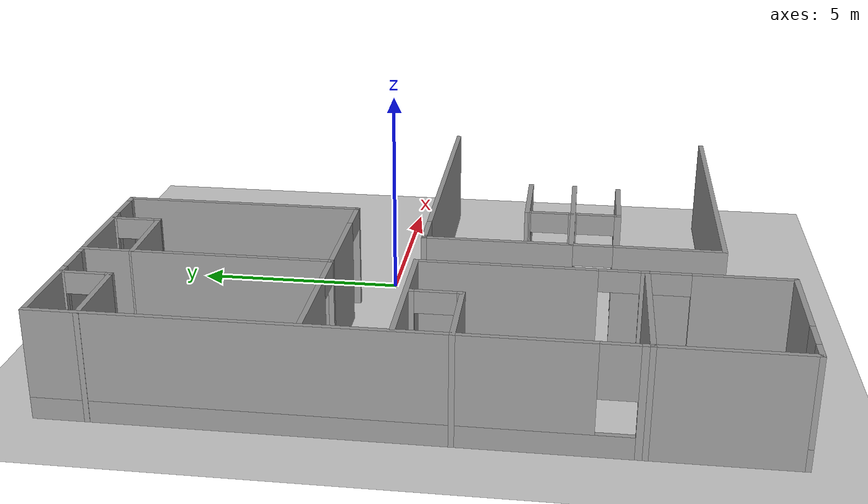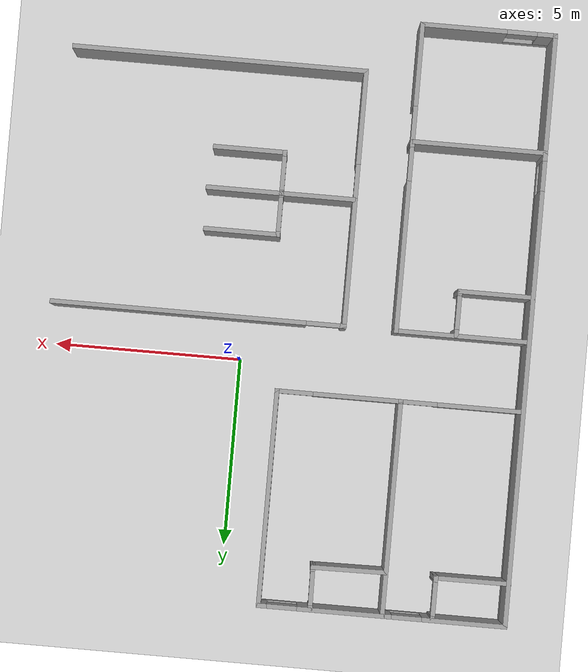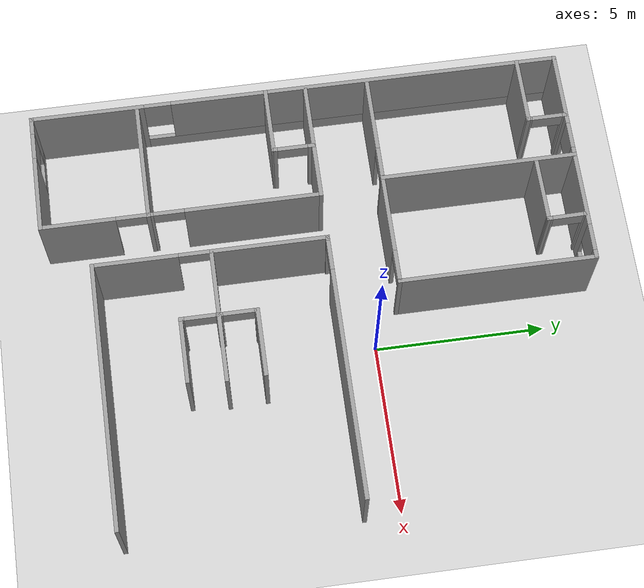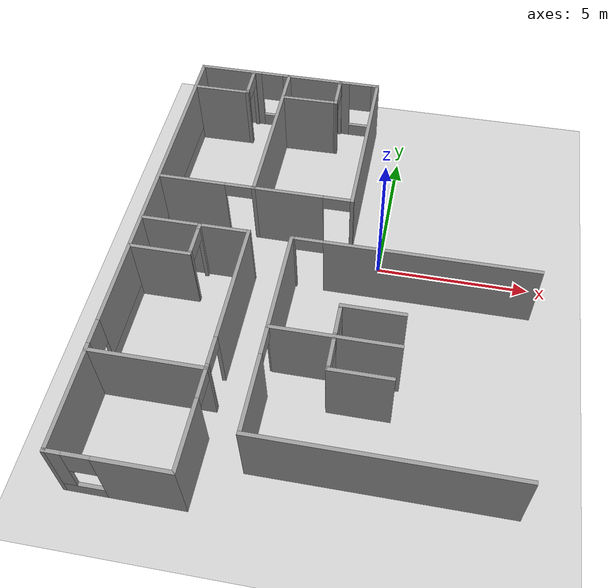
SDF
<sdf version="1.6">
 <world name="default">
  <model name="ground_plane">
   <static>1</static>
   <link name="link">
    <collision name="collision">
     <geometry><plane><normal>0 0 1</normal><size>100 100</size></plane></geometry>
     <surface><friction><ode><mu>100</mu><mu2>50</mu2></ode></friction></surface>
    </collision>
    <visual name="visual">
     <cast_shadows>0</cast_shadows>
     <geometry><plane><normal>0 0 1</normal><size>100 100</size></plane></geometry>
     <material>
      <script><uri>file://media/materials/scripts/gazebo.material</uri><name>Gazebo/Grey</name></script>
     </material>
    </visual>
   </link>
  </model>
  <model name="resthome">
   <pose>1.14114 -1.394 0 0 -0 0</pose>
   <link name="Wall_102">
    <collision name="Wall_102_Collision">
     <geometry><box><size>3.97 0.12 2.5</size></box></geometry>
     <pose>0 0 1.25 0 -0 0</pose>
    </collision>
    <visual name="Wall_102_Visual">
     <pose>0 0 1.25 0 -0 0</pose>
     <geometry><box><size>3.97 0.12 2.5</size></box></geometry>
     <material>
      <script><uri>file://media/materials/scripts/gazebo.material</uri><name>Gazebo/Grey</name></script>
      <ambient>1 1 1 1</ambient>
     </material>
    </visual>
    <pose>-1.86014 -3.05 0 0 -0 3.14159</pose>
   </link>
   <link name="Wall_115">
    <pose>-6.81414 -0.269 0 0 0 -1.5708</pose>
    <visual name="Wall_115_Visual_0">
     <pose>-0.510844 0 1.25 0 -0 0</pose>
     <geometry><box><size>0.214795 0.12 2.5</size></box></geometry>
     <material>
      <script><uri>file://media/materials/scripts/gazebo.material</uri><name>Gazebo/Grey</name></script>
      <ambient>1 1 1 1</ambient>
     </material>
    </visual>
    <collision name="Wall_115_Collision_0">
     <geometry><box><size>0.214795 0.12 2.5</size></box></geometry>
     <pose>-0.510844 0 1.25 0 -0 0</pose>
    </collision>
    <visual name="Wall_115_Visual_1">
     <pose>0.557398 0 1.25 0 -0 0</pose>
     <geometry><box><size>0.121688 0.12 2.5</size></box></geometry>
     <material>
      <script><uri>file://media/materials/scripts/gazebo.material</uri><name>Gazebo/Grey</name></script>
      <ambient>1 1 1 1</ambient>
     </material>
    </visual>
    <collision name="Wall_115_Collision_1">
     <geometry><box><size>0.121688 0.12 2.5</size></box></geometry>
     <pose>0.557398 0 1.25 0 -0 0</pose>
    </collision>
    <visual name="Wall_115_Visual_2">
     <pose>0.046554 0 2.25 0 -0 0</pose>
     <geometry><box><size>0.9 0.12 0.5</size></box></geometry>
     <material>
      <script><uri>file://media/materials/scripts/gazebo.material</uri><name>Gazebo/Grey</name></script>
      <ambient>1 1 1 1</ambient>
     </material>
    </visual>
    <collision name="Wall_115_Collision_2">
     <geometry><box><size>0.9 0.12 0.5</size></box></geometry>
     <pose>0.046554 0 2.25 0 -0 0</pose>
    </collision>
   </link>
   <link name="Wall_118">
    <collision name="Wall_118_Collision">
     <geometry><box><size>2.052 0.12 2.5</size></box></geometry>
     <pose>0 0 1.25 0 -0 0</pose>
    </collision>
    <visual name="Wall_118_Visual">
     <pose>0 0 1.25 0 -0 0</pose>
     <geometry><box><size>2.052 0.12 2.5</size></box></geometry>
     <material>
      <script><uri>file://media/materials/scripts/gazebo.material</uri><name>Gazebo/Grey</name></script>
      <ambient>1 1 1 1</ambient>
     </material>
    </visual>
    <pose>-7.78414 -0.876 0 0 -0 0</pose>
   </link>
   <link name="Wall_129">
    <collision name="Wall_129_Collision">
     <geometry><box><size>3.658 0.12 2.5</size></box></geometry>
     <pose>0 0 1.25 0 -0 0</pose>
    </collision>
    <visual name="Wall_129_Visual">
     <pose>0 0 1.25 0 -0 0</pose>
     <geometry><box><size>3.658 0.12 2.5</size></box></geometry>
     <material>
      <script><uri>file://media/materials/scripts/gazebo.material</uri><name>Gazebo/Grey</name></script>
      <ambient>1 1 1 1</ambient>
     </material>
    </visual>
    <pose>-6.98214 -4.718 0 0 -0 3.14159</pose>
   </link>
   <link name="Wall_133">
    <collision name="Wall_133_Collision">
     <geometry><box><size>2.05174 0.12 2.5</size></box></geometry>
     <pose>0 0 1.25 0 -0 0</pose>
    </collision>
    <visual name="Wall_133_Visual">
     <pose>0 0 1.25 0 -0 0</pose>
     <geometry><box><size>2.05174 0.12 2.5</size></box></geometry>
     <material>
      <script><uri>file://media/materials/scripts/gazebo.material</uri><name>Gazebo/Grey</name></script>
      <ambient>1 1 1 1</ambient>
     </material>
    </visual>
    <pose>-7.79079 6.709 0 0 0 -3.13849</pose>
   </link>
   <link name="Wall_137">
    <collision name="Wall_137_Collision">
     <geometry><box><size>2.051 0.12 2.5</size></box></geometry>
     <pose>0 0 1.25 0 -0 0</pose>
    </collision>
    <visual name="Wall_137_Visual">
     <pose>0 0 1.25 0 -0 0</pose>
     <geometry><box><size>2.051 0.12 2.5</size></box></geometry>
     <material>
      <script><uri>file://media/materials/scripts/gazebo.material</uri><name>Gazebo/Grey</name></script>
      <ambient>1 1 1 1</ambient>
     </material>
    </visual>
    <pose>-4.53455 6.70058 0 0 0 -3.1296</pose>
   </link>
   <link name="Wall_142">
    <pose>-6.82514 7.2545 0 0 0 -1.5708</pose>
    <visual name="Wall_142_Visual_0">
     <pose>-0.53647 0 1.25 0 -0 0</pose>
     <geometry><box><size>0.133047 0.12 2.5</size></box></geometry>
     <material>
      <script><uri>file://media/materials/scripts/gazebo.material</uri><name>Gazebo/Grey</name></script>
      <ambient>1 1 1 1</ambient>
     </material>
    </visual>
    <collision name="Wall_142_Collision_0">
     <geometry><box><size>0.133047 0.12 2.5</size></box></geometry>
     <pose>-0.53647 0 1.25 0 -0 0</pose>
    </collision>
    <visual name="Wall_142_Visual_1">
     <pose>0.516523 0 1.25 0 -0 0</pose>
     <geometry><box><size>0.17294 0.12 2.5</size></box></geometry>
     <material>
      <script><uri>file://media/materials/scripts/gazebo.material</uri><name>Gazebo/Grey</name></script>
      <ambient>1 1 1 1</ambient>
     </material>
    </visual>
    <collision name="Wall_142_Collision_1">
     <geometry><box><size>0.17294 0.12 2.5</size></box></geometry>
     <pose>0.516523 0 1.25 0 -0 0</pose>
    </collision>
    <visual name="Wall_142_Visual_2">
     <pose>-0.019947 0 2.25 0 -0 0</pose>
     <geometry><box><size>0.9 0.12 0.5</size></box></geometry>
     <material>
      <script><uri>file://media/materials/scripts/gazebo.material</uri><name>Gazebo/Grey</name></script>
      <ambient>1 1 1 1</ambient>
     </material>
    </visual>
    <collision name="Wall_142_Collision_2">
     <geometry><box><size>0.9 0.12 0.5</size></box></geometry>
     <pose>-0.019947 0 2.25 0 -0 0</pose>
    </collision>
   </link>
   <link name="Wall_145">
    <pose>-3.57748 7.2546 0 0 0 -1.55558</pose>
    <visual name="Wall_145_Visual_0">
     <pose>-0.537283 0 1.25 0 -0 0</pose>
     <geometry><box><size>0.130435 0.12 2.5</size></box></geometry>
     <material>
      <script><uri>file://media/materials/scripts/gazebo.material</uri><name>Gazebo/Grey</name></script>
      <ambient>1 1 1 1</ambient>
     </material>
    </visual>
    <collision name="Wall_145_Collision_0">
     <geometry><box><size>0.130435 0.12 2.5</size></box></geometry>
     <pose>-0.537283 0 1.25 0 -0 0</pose>
    </collision>
    <visual name="Wall_145_Visual_1">
     <pose>0.515217 0 1.25 0 -0 0</pose>
     <geometry><box><size>0.174565 0.12 2.5</size></box></geometry>
     <material>
      <script><uri>file://media/materials/scripts/gazebo.material</uri><name>Gazebo/Grey</name></script>
      <ambient>1 1 1 1</ambient>
     </material>
    </visual>
    <collision name="Wall_145_Collision_1">
     <geometry><box><size>0.174565 0.12 2.5</size></box></geometry>
     <pose>0.515217 0 1.25 0 -0 0</pose>
    </collision>
    <visual name="Wall_145_Visual_2">
     <pose>-0.022065 0 2.25 0 -0 0</pose>
     <geometry><box><size>0.9 0.12 0.5</size></box></geometry>
     <material>
      <script><uri>file://media/materials/scripts/gazebo.material</uri><name>Gazebo/Grey</name></script>
      <ambient>1 1 1 1</ambient>
     </material>
    </visual>
    <collision name="Wall_145_Collision_2">
     <geometry><box><size>0.9 0.12 0.5</size></box></geometry>
     <pose>-0.022065 0 2.25 0 -0 0</pose>
    </collision>
   </link>
   <link name="Wall_155">
    <collision name="Wall_155_Collision">
     <geometry><box><size>2.04056 0.12 2.5</size></box></geometry>
     <pose>0 0 1.25 0 -0 0</pose>
    </collision>
    <visual name="Wall_155_Visual">
     <pose>0 0 1.25 0 -0 0</pose>
     <geometry><box><size>2.04056 0.12 2.5</size></box></geometry>
     <material>
      <script><uri>file://media/materials/scripts/gazebo.material</uri><name>Gazebo/Grey</name></script>
      <ambient>1 1 1 1</ambient>
     </material>
    </visual>
    <pose>-0.923856 -1.952 0 0 -0 3.14159</pose>
   </link>
   <link name="Wall_157">
    <pose>-1.88414 -2.502 0 0 0 -1.5708</pose>
    <visual name="Wall_157_Visual_0">
     <pose>-0.533992 0 1.25 0 -0 0</pose>
     <geometry><box><size>0.151919 0.12 2.5</size></box></geometry>
     <material>
      <script><uri>file://media/materials/scripts/gazebo.material</uri><name>Gazebo/Grey</name></script>
      <ambient>1 1 1 1</ambient>
     </material>
    </visual>
    <collision name="Wall_157_Collision_0">
     <geometry><box><size>0.151919 0.12 2.5</size></box></geometry>
     <pose>-0.533992 0 1.25 0 -0 0</pose>
    </collision>
    <visual name="Wall_157_Visual_1">
     <pose>0.52596 0 1.25 0 -0 0</pose>
     <geometry><box><size>0.167985 0.12 2.5</size></box></geometry>
     <material>
      <script><uri>file://media/materials/scripts/gazebo.material</uri><name>Gazebo/Grey</name></script>
      <ambient>1 1 1 1</ambient>
     </material>
    </visual>
    <collision name="Wall_157_Collision_1">
     <geometry><box><size>0.167985 0.12 2.5</size></box></geometry>
     <pose>0.52596 0 1.25 0 -0 0</pose>
    </collision>
    <visual name="Wall_157_Visual_2">
     <pose>-0.008033 0 2.25 0 -0 0</pose>
     <geometry><box><size>0.9 0.12 0.5</size></box></geometry>
     <material>
      <script><uri>file://media/materials/scripts/gazebo.material</uri><name>Gazebo/Grey</name></script>
      <ambient>1 1 1 1</ambient>
     </material>
    </visual>
    <collision name="Wall_157_Collision_2">
     <geometry><box><size>0.9 0.12 0.5</size></box></geometry>
     <pose>-0.008033 0 2.25 0 -0 0</pose>
    </collision>
   </link>
   <link name="Wall_163">
    <pose>-1.88414 -3.595 0 0 0 -1.5708</pose>
    <visual name="Wall_163_Visual_0">
     <pose>-0.529501 0 1.25 0 -0 0</pose>
     <geometry><box><size>0.146998 0.12 2.5</size></box></geometry>
     <material>
      <script><uri>file://media/materials/scripts/gazebo.material</uri><name>Gazebo/Grey</name></script>
      <ambient>1 1 1 1</ambient>
     </material>
    </visual>
    <collision name="Wall_163_Collision_0">
     <geometry><box><size>0.146998 0.12 2.5</size></box></geometry>
     <pose>-0.529501 0 1.25 0 -0 0</pose>
    </collision>
    <visual name="Wall_163_Visual_1">
     <pose>0.523499 0 1.25 0 -0 0</pose>
     <geometry><box><size>0.159002 0.12 2.5</size></box></geometry>
     <material>
      <script><uri>file://media/materials/scripts/gazebo.material</uri><name>Gazebo/Grey</name></script>
      <ambient>1 1 1 1</ambient>
     </material>
    </visual>
    <collision name="Wall_163_Collision_1">
     <geometry><box><size>0.159002 0.12 2.5</size></box></geometry>
     <pose>0.523499 0 1.25 0 -0 0</pose>
    </collision>
    <visual name="Wall_163_Visual_2">
     <pose>-0.006002 0 2.25 0 -0 0</pose>
     <geometry><box><size>0.9 0.12 0.5</size></box></geometry>
     <material>
      <script><uri>file://media/materials/scripts/gazebo.material</uri><name>Gazebo/Grey</name></script>
      <ambient>1 1 1 1</ambient>
     </material>
    </visual>
    <collision name="Wall_163_Collision_2">
     <geometry><box><size>0.9 0.12 0.5</size></box></geometry>
     <pose>-0.006002 0 2.25 0 -0 0</pose>
    </collision>
   </link>
   <link name="Wall_165">
    <collision name="Wall_165_Collision">
     <geometry><box><size>1.97 0.12 2.5</size></box></geometry>
     <pose>0 0 1.25 0 -0 0</pose>
    </collision>
    <visual name="Wall_165_Visual">
     <pose>0 0 1.25 0 -0 0</pose>
     <geometry><box><size>1.97 0.12 2.5</size></box></geometry>
     <material>
      <script><uri>file://media/materials/scripts/gazebo.material</uri><name>Gazebo/Grey</name></script>
      <ambient>1 1 1 1</ambient>
     </material>
    </visual>
    <pose>-0.959138 -4.138 0 0 -0 0</pose>
   </link>
   <link name="Wall_28">
    <pose>-5.22114 -3.765 0 0 -0 1.5708</pose>
    <visual name="Wall_28_Visual_0">
     <pose>-3.01552 0 1.25 0 -0 0</pose>
     <geometry><box><size>2.23696 0.12 2.5</size></box></geometry>
     <material>
      <script><uri>file://media/materials/scripts/gazebo.material</uri><name>Gazebo/Grey</name></script>
      <ambient>1 1 1 1</ambient>
     </material>
    </visual>
    <collision name="Wall_28_Collision_0">
     <geometry><box><size>2.23696 0.12 2.5</size></box></geometry>
     <pose>-3.01552 0 1.25 0 -0 0</pose>
    </collision>
    <visual name="Wall_28_Visual_1">
     <pose>-0.90291 0 1.25 0 -0 0</pose>
     <geometry><box><size>0.188263 0.12 2.5</size></box></geometry>
     <material>
      <script><uri>file://media/materials/scripts/gazebo.material</uri><name>Gazebo/Grey</name></script>
      <ambient>1 1 1 1</ambient>
     </material>
    </visual>
    <collision name="Wall_28_Collision_1">
     <geometry><box><size>0.188263 0.12 2.5</size></box></geometry>
     <pose>-0.90291 0 1.25 0 -0 0</pose>
    </collision>
    <visual name="Wall_28_Visual_2">
     <pose>2.11261 0 1.25 0 -0 0</pose>
     <geometry><box><size>4.04278 0.12 2.5</size></box></geometry>
     <material>
      <script><uri>file://media/materials/scripts/gazebo.material</uri><name>Gazebo/Grey</name></script>
      <ambient>1 1 1 1</ambient>
     </material>
    </visual>
    <collision name="Wall_28_Collision_2">
     <geometry><box><size>4.04278 0.12 2.5</size></box></geometry>
     <pose>2.11261 0 1.25 0 -0 0</pose>
    </collision>
    <visual name="Wall_28_Visual_3">
     <pose>-1.44704 0 2.25 0 -0 0</pose>
     <geometry><box><size>0.9 0.12 0.5</size></box></geometry>
     <material>
      <script><uri>file://media/materials/scripts/gazebo.material</uri><name>Gazebo/Grey</name></script>
      <ambient>1 1 1 1</ambient>
     </material>
    </visual>
    <collision name="Wall_28_Collision_3">
     <geometry><box><size>0.9 0.12 0.5</size></box></geometry>
     <pose>-1.44704 0 2.25 0 -0 0</pose>
    </collision>
    <visual name="Wall_28_Visual_4">
     <pose>-0.358778 0 2.25 0 -0 0</pose>
     <geometry><box><size>0.9 0.12 0.5</size></box></geometry>
     <material>
      <script><uri>file://media/materials/scripts/gazebo.material</uri><name>Gazebo/Grey</name></script>
      <ambient>1 1 1 1</ambient>
     </material>
    </visual>
    <collision name="Wall_28_Collision_4">
     <geometry><box><size>0.9 0.12 0.5</size></box></geometry>
     <pose>-0.358778 0 2.25 0 -0 0</pose>
    </collision>
   </link>
   <link name="Wall_29">
    <collision name="Wall_29_Collision">
     <geometry><box><size>3.57 0.12 2.5</size></box></geometry>
     <pose>0 0 1.25 0 -0 0</pose>
    </collision>
    <visual name="Wall_29_Visual">
     <pose>0 0 1.25 0 -0 0</pose>
     <geometry><box><size>3.57 0.12 2.5</size></box></geometry>
     <material>
      <script><uri>file://media/materials/scripts/gazebo.material</uri><name>Gazebo/Grey</name></script>
      <ambient>1 1 1 1</ambient>
     </material>
    </visual>
    <pose>-6.94614 0.309 0 0 -0 3.14159</pose>
   </link>
   <link name="Wall_32">
    <pose>-6.98564 -7.839 0 0 -0 3.14159</pose>
    <visual name="Wall_32_Visual_0">
     <pose>-0.67 0 1.25 0 -0 0</pose>
     <geometry><box><size>2.309 0.12 2.5</size></box></geometry>
     <material>
      <script><uri>file://media/materials/scripts/gazebo.material</uri><name>Gazebo/Grey</name></script>
      <ambient>1 1 1 1</ambient>
     </material>
    </visual>
    <collision name="Wall_32_Collision_0">
     <geometry><box><size>2.309 0.12 2.5</size></box></geometry>
     <pose>-0.67 0 1.25 0 -0 0</pose>
    </collision>
    <visual name="Wall_32_Visual_1">
     <pose>1.1545 0 0.25 0 -0 0</pose>
     <geometry><box><size>1.34 0.12 0.5</size></box></geometry>
     <material>
      <script><uri>file://media/materials/scripts/gazebo.material</uri><name>Gazebo/Grey</name></script>
      <ambient>1 1 1 1</ambient>
     </material>
    </visual>
    <collision name="Wall_32_Collision_1">
     <geometry><box><size>1.34 0.12 0.5</size></box></geometry>
     <pose>1.1545 0 0.25 0 -0 0</pose>
    </collision>
    <visual name="Wall_32_Visual_2">
     <pose>1.5545 0 1.5 0 -0 0</pose>
     <geometry><box><size>0.54 0.12 2</size></box></geometry>
     <material>
      <script><uri>file://media/materials/scripts/gazebo.material</uri><name>Gazebo/Grey</name></script>
      <ambient>1 1 1 1</ambient>
     </material>
    </visual>
    <collision name="Wall_32_Collision_2">
     <geometry><box><size>0.54 0.12 2</size></box></geometry>
     <pose>1.5545 0 1.5 0 -0 0</pose>
    </collision>
    <visual name="Wall_32_Visual_3">
     <pose>0.8845 0 2 0 -0 0</pose>
     <geometry><box><size>0.8 0.12 1</size></box></geometry>
     <material>
      <script><uri>file://media/materials/scripts/gazebo.material</uri><name>Gazebo/Grey</name></script>
      <ambient>1 1 1 1</ambient>
     </material>
    </visual>
    <collision name="Wall_32_Collision_3">
     <geometry><box><size>0.8 0.12 1</size></box></geometry>
     <pose>0.8845 0 2 0 -0 0</pose>
    </collision>
   </link>
   <link name="Wall_33">
    <pose>-8.75014 0 0 0 -0 1.5708</pose>
    <visual name="Wall_33_Visual_0">
     <pose>-6.20354 0 1.25 0 -0 0</pose>
     <geometry><box><size>3.39092 0.12 2.5</size></box></geometry>
     <material>
      <script><uri>file://media/materials/scripts/gazebo.material</uri><name>Gazebo/Grey</name></script>
      <ambient>1 1 1 1</ambient>
     </material>
    </visual>
    <collision name="Wall_33_Collision_0">
     <geometry><box><size>3.39092 0.12 2.5</size></box></geometry>
     <pose>-6.20354 0 1.25 0 -0 0</pose>
    </collision>
    <visual name="Wall_33_Visual_1">
     <pose>1.69546 0 0.25 0 -0 0</pose>
     <geometry><box><size>12.4071 0.12 0.5</size></box></geometry>
     <material>
      <script><uri>file://media/materials/scripts/gazebo.material</uri><name>Gazebo/Grey</name></script>
      <ambient>1 1 1 1</ambient>
     </material>
    </visual>
    <collision name="Wall_33_Collision_1">
     <geometry><box><size>12.4071 0.12 0.5</size></box></geometry>
     <pose>1.69546 0 0.25 0 -0 0</pose>
    </collision>
    <visual name="Wall_33_Visual_2">
     <pose>2.09546 0 1.5 0 -0 0</pose>
     <geometry><box><size>11.6071 0.12 2</size></box></geometry>
     <material>
      <script><uri>file://media/materials/scripts/gazebo.material</uri><name>Gazebo/Grey</name></script>
      <ambient>1 1 1 1</ambient>
     </material>
    </visual>
    <collision name="Wall_33_Collision_2">
     <geometry><box><size>11.6071 0.12 2</size></box></geometry>
     <pose>2.09546 0 1.5 0 -0 0</pose>
    </collision>
    <visual name="Wall_33_Visual_3">
     <pose>-4.10808 0 1.9 0 -0 0</pose>
     <geometry><box><size>0.8 0.12 1.2</size></box></geometry>
     <material>
      <script><uri>file://media/materials/scripts/gazebo.material</uri><name>Gazebo/Grey</name></script>
      <ambient>1 1 1 1</ambient>
     </material>
    </visual>
    <collision name="Wall_33_Collision_3">
     <geometry><box><size>0.8 0.12 1.2</size></box></geometry>
     <pose>-4.10808 0 1.9 0 -0 0</pose>
    </collision>
   </link>
   <link name="Wall_35">
    <pose>-7.12514 7.839 0 0 -0 0</pose>
    <visual name="Wall_35_Visual_0">
     <pose>-0.549883 0 1.25 0 -0 0</pose>
     <geometry><box><size>2.27023 0.12 2.5</size></box></geometry>
     <material>
      <script><uri>file://media/materials/scripts/gazebo.material</uri><name>Gazebo/Grey</name></script>
      <ambient>1 1 1 1</ambient>
     </material>
    </visual>
    <collision name="Wall_35_Collision_0">
     <geometry><box><size>2.27023 0.12 2.5</size></box></geometry>
     <pose>-0.549883 0 1.25 0 -0 0</pose>
    </collision>
    <visual name="Wall_35_Visual_1">
     <pose>1.13512 0 0.25 0 -0 0</pose>
     <geometry><box><size>1.09977 0.12 0.5</size></box></geometry>
     <material>
      <script><uri>file://media/materials/scripts/gazebo.material</uri><name>Gazebo/Grey</name></script>
      <ambient>1 1 1 1</ambient>
     </material>
    </visual>
    <collision name="Wall_35_Collision_1">
     <geometry><box><size>1.09977 0.12 0.5</size></box></geometry>
     <pose>1.13512 0 0.25 0 -0 0</pose>
    </collision>
    <visual name="Wall_35_Visual_2">
     <pose>1.53512 0 1.5 0 -0 0</pose>
     <geometry><box><size>0.299766 0.12 2</size></box></geometry>
     <material>
      <script><uri>file://media/materials/scripts/gazebo.material</uri><name>Gazebo/Grey</name></script>
      <ambient>1 1 1 1</ambient>
     </material>
    </visual>
    <collision name="Wall_35_Collision_2">
     <geometry><box><size>0.299766 0.12 2</size></box></geometry>
     <pose>1.53512 0 1.5 0 -0 0</pose>
    </collision>
    <visual name="Wall_35_Visual_3">
     <pose>0.985234 0 1.9 0 -0 0</pose>
     <geometry><box><size>0.8 0.12 1.2</size></box></geometry>
     <material>
      <script><uri>file://media/materials/scripts/gazebo.material</uri><name>Gazebo/Grey</name></script>
      <ambient>1 1 1 1</ambient>
     </material>
    </visual>
    <collision name="Wall_35_Collision_3">
     <geometry><box><size>0.8 0.12 1.2</size></box></geometry>
     <pose>0.985234 0 1.9 0 -0 0</pose>
    </collision>
   </link>
   <link name="Wall_37">
    <collision name="Wall_37_Collision">
     <geometry><box><size>5.8 0.12 2.5</size></box></geometry>
     <pose>0 0 1.25 0 -0 0</pose>
    </collision>
    <visual name="Wall_37_Visual">
     <pose>0 0 1.25 0 -0 0</pose>
     <geometry><box><size>5.8 0.12 2.5</size></box></geometry>
     <material>
      <script><uri>file://media/materials/scripts/gazebo.material</uri><name>Gazebo/Grey</name></script>
      <ambient>1 1 1 1</ambient>
     </material>
    </visual>
    <pose>-5.50014 4.999 0 0 0 -1.5708</pose>
   </link>
   <link name="Wall_39">
    <pose>-7.06514 2.159 0 0 -0 3.14159</pose>
    <visual name="Wall_39_Visual_0">
     <pose>-1.56113 0 1.25 0 -0 0</pose>
     <geometry><box><size>0.127736 0.12 2.5</size></box></geometry>
     <material>
      <script><uri>file://media/materials/scripts/gazebo.material</uri><name>Gazebo/Grey</name></script>
      <ambient>1 1 1 1</ambient>
     </material>
    </visual>
    <collision name="Wall_39_Collision_0">
     <geometry><box><size>0.127736 0.12 2.5</size></box></geometry>
     <pose>-1.56113 0 1.25 0 -0 0</pose>
    </collision>
    <visual name="Wall_39_Visual_1">
     <pose>0.513868 0 1.25 0 -0 0</pose>
     <geometry><box><size>2.22226 0.12 2.5</size></box></geometry>
     <material>
      <script><uri>file://media/materials/scripts/gazebo.material</uri><name>Gazebo/Grey</name></script>
      <ambient>1 1 1 1</ambient>
     </material>
    </visual>
    <collision name="Wall_39_Collision_1">
     <geometry><box><size>2.22226 0.12 2.5</size></box></geometry>
     <pose>0.513868 0 1.25 0 -0 0</pose>
    </collision>
    <visual name="Wall_39_Visual_2">
     <pose>-1.04726 0 2.25 0 -0 0</pose>
     <geometry><box><size>0.9 0.12 0.5</size></box></geometry>
     <material>
      <script><uri>file://media/materials/scripts/gazebo.material</uri><name>Gazebo/Grey</name></script>
      <ambient>1 1 1 1</ambient>
     </material>
    </visual>
    <collision name="Wall_39_Collision_2">
     <geometry><box><size>0.9 0.12 0.5</size></box></geometry>
     <pose>-1.04726 0 2.25 0 -0 0</pose>
    </collision>
   </link>
   <link name="Wall_41">
    <pose>-3.86014 7.839 0 0 -0 0</pose>
    <visual name="Wall_41_Visual_0">
     <pose>-0.536758 0 1.25 0 -0 0</pose>
     <geometry><box><size>2.32648 0.12 2.5</size></box></geometry>
     <material>
      <script><uri>file://media/materials/scripts/gazebo.material</uri><name>Gazebo/Grey</name></script>
      <ambient>1 1 1 1</ambient>
     </material>
    </visual>
    <collision name="Wall_41_Collision_0">
     <geometry><box><size>2.32648 0.12 2.5</size></box></geometry>
     <pose>-0.536758 0 1.25 0 -0 0</pose>
    </collision>
    <visual name="Wall_41_Visual_1">
     <pose>1.16324 0 0.25 0 -0 0</pose>
     <geometry><box><size>1.07352 0.12 0.5</size></box></geometry>
     <material>
      <script><uri>file://media/materials/scripts/gazebo.material</uri><name>Gazebo/Grey</name></script>
      <ambient>1 1 1 1</ambient>
     </material>
    </visual>
    <collision name="Wall_41_Collision_1">
     <geometry><box><size>1.07352 0.12 0.5</size></box></geometry>
     <pose>1.16324 0 0.25 0 -0 0</pose>
    </collision>
    <visual name="Wall_41_Visual_2">
     <pose>1.56324 0 1.5 0 -0 0</pose>
     <geometry><box><size>0.273516 0.12 2</size></box></geometry>
     <material>
      <script><uri>file://media/materials/scripts/gazebo.material</uri><name>Gazebo/Grey</name></script>
      <ambient>1 1 1 1</ambient>
     </material>
    </visual>
    <collision name="Wall_41_Collision_2">
     <geometry><box><size>0.273516 0.12 2</size></box></geometry>
     <pose>1.56324 0 1.5 0 -0 0</pose>
    </collision>
    <visual name="Wall_41_Visual_3">
     <pose>1.02648 0 1.9 0 -0 0</pose>
     <geometry><box><size>0.8 0.12 1.2</size></box></geometry>
     <material>
      <script><uri>file://media/materials/scripts/gazebo.material</uri><name>Gazebo/Grey</name></script>
      <ambient>1 1 1 1</ambient>
     </material>
    </visual>
    <collision name="Wall_41_Collision_3">
     <geometry><box><size>0.8 0.12 1.2</size></box></geometry>
     <pose>1.02648 0 1.9 0 -0 0</pose>
    </collision>
   </link>
   <link name="Wall_43">
    <collision name="Wall_43_Collision">
     <geometry><box><size>5.8 0.12 2.5</size></box></geometry>
     <pose>0 0 1.25 0 -0 0</pose>
    </collision>
    <visual name="Wall_43_Visual">
     <pose>0 0 1.25 0 -0 0</pose>
     <geometry><box><size>5.8 0.12 2.5</size></box></geometry>
     <material>
      <script><uri>file://media/materials/scripts/gazebo.material</uri><name>Gazebo/Grey</name></script>
      <ambient>1 1 1 1</ambient>
     </material>
    </visual>
    <pose>-2.22014 4.999 0 0 0 -1.5708</pose>
   </link>
   <link name="Wall_45">
    <pose>-3.86014 2.159 0 0 -0 3.14159</pose>
    <visual name="Wall_45_Visual_0">
     <pose>-1.64063 0 1.25 0 -0 0</pose>
     <geometry><box><size>0.118735 0.12 2.5</size></box></geometry>
     <material>
      <script><uri>file://media/materials/scripts/gazebo.material</uri><name>Gazebo/Grey</name></script>
      <ambient>1 1 1 1</ambient>
     </material>
    </visual>
    <collision name="Wall_45_Collision_0">
     <geometry><box><size>0.118735 0.12 2.5</size></box></geometry>
     <pose>-1.64063 0 1.25 0 -0 0</pose>
    </collision>
    <visual name="Wall_45_Visual_1">
     <pose>0.509368 0 1.25 0 -0 0</pose>
     <geometry><box><size>2.38126 0.12 2.5</size></box></geometry>
     <material>
      <script><uri>file://media/materials/scripts/gazebo.material</uri><name>Gazebo/Grey</name></script>
      <ambient>1 1 1 1</ambient>
     </material>
    </visual>
    <collision name="Wall_45_Collision_1">
     <geometry><box><size>2.38126 0.12 2.5</size></box></geometry>
     <pose>0.509368 0 1.25 0 -0 0</pose>
    </collision>
    <visual name="Wall_45_Visual_2">
     <pose>-1.13126 0 2.25 0 -0 0</pose>
     <geometry><box><size>0.9 0.12 0.5</size></box></geometry>
     <material>
      <script><uri>file://media/materials/scripts/gazebo.material</uri><name>Gazebo/Grey</name></script>
      <ambient>1 1 1 1</ambient>
     </material>
    </visual>
    <collision name="Wall_45_Collision_2">
     <geometry><box><size>0.9 0.12 0.5</size></box></geometry>
     <pose>-1.13126 0 2.25 0 -0 0</pose>
    </collision>
   </link>
   <link name="Wall_81">
    <pose>-3.84114 -3.0805 0 0 0 -1.5708</pose>
    <visual name="Wall_81_Visual_0">
     <pose>-1.71907 0 1.25 0 -0 0</pose>
     <geometry><box><size>3.46082 0.12 2.5</size></box></geometry>
     <material>
      <script><uri>file://media/materials/scripts/gazebo.material</uri><name>Gazebo/Grey</name></script>
      <ambient>1 1 1 1</ambient>
     </material>
    </visual>
    <collision name="Wall_81_Collision_0">
     <geometry><box><size>3.46082 0.12 2.5</size></box></geometry>
     <pose>-1.71907 0 1.25 0 -0 0</pose>
    </collision>
    <visual name="Wall_81_Visual_1">
     <pose>2.18041 0 1.25 0 -0 0</pose>
     <geometry><box><size>2.53815 0.12 2.5</size></box></geometry>
     <material>
      <script><uri>file://media/materials/scripts/gazebo.material</uri><name>Gazebo/Grey</name></script>
      <ambient>1 1 1 1</ambient>
     </material>
    </visual>
    <collision name="Wall_81_Collision_1">
     <geometry><box><size>2.53815 0.12 2.5</size></box></geometry>
     <pose>2.18041 0 1.25 0 -0 0</pose>
    </collision>
    <visual name="Wall_81_Visual_2">
     <pose>0.461334 0 2.25 0 -0 0</pose>
     <geometry><box><size>0.9 0.12 0.5</size></box></geometry>
     <material>
      <script><uri>file://media/materials/scripts/gazebo.material</uri><name>Gazebo/Grey</name></script>
      <ambient>1 1 1 1</ambient>
     </material>
    </visual>
    <collision name="Wall_81_Collision_2">
     <geometry><box><size>0.9 0.12 0.5</size></box></geometry>
     <pose>0.461334 0 2.25 0 -0 0</pose>
    </collision>
   </link>
   <link name="Wall_94">
    <collision name="Wall_94_Collision">
     <geometry><box><size>7.871 0.12 2.5</size></box></geometry>
     <pose>0 0 1.25 0 -0 0</pose>
    </collision>
    <visual name="Wall_94_Visual">
     <pose>0 0 1.25 0 -0 0</pose>
     <geometry><box><size>7.871 0.12 2.5</size></box></geometry>
     <material>
      <script><uri>file://media/materials/scripts/gazebo.material</uri><name>Gazebo/Grey</name></script>
      <ambient>1 1 1 1</ambient>
     </material>
    </visual>
    <pose>0.034362 -6.47 0 0 -0 0</pose>
   </link>
   <link name="Wall_96">
    <pose>0.034362 0.309 0 0 -0 0</pose>
    <visual name="Wall_96_Visual_0">
     <pose>-3.85051 0 1.25 0 -0 0</pose>
     <geometry><box><size>0.170545 0.12 2.5</size></box></geometry>
     <material>
      <script><uri>file://media/materials/scripts/gazebo.material</uri><name>Gazebo/Grey</name></script>
      <ambient>1 1 1 1</ambient>
     </material>
    </visual>
    <collision name="Wall_96_Collision_0">
     <geometry><box><size>0.170545 0.12 2.5</size></box></geometry>
     <pose>-3.85051 0 1.25 0 -0 0</pose>
    </collision>
    <visual name="Wall_96_Visual_1">
     <pose>0.535273 0 1.25 0 -0 0</pose>
     <geometry><box><size>6.80102 0.12 2.5</size></box></geometry>
     <material>
      <script><uri>file://media/materials/scripts/gazebo.material</uri><name>Gazebo/Grey</name></script>
      <ambient>1 1 1 1</ambient>
     </material>
    </visual>
    <collision name="Wall_96_Collision_1">
     <geometry><box><size>6.80102 0.12 2.5</size></box></geometry>
     <pose>0.535273 0 1.25 0 -0 0</pose>
    </collision>
    <visual name="Wall_96_Visual_2">
     <pose>-3.31523 0 2.25 0 -0 0</pose>
     <geometry><box><size>0.9 0.12 0.5</size></box></geometry>
     <material>
      <script><uri>file://media/materials/scripts/gazebo.material</uri><name>Gazebo/Grey</name></script>
      <ambient>1 1 1 1</ambient>
     </material>
    </visual>
    <collision name="Wall_96_Collision_2">
     <geometry><box><size>0.9 0.12 0.5</size></box></geometry>
     <pose>-3.31523 0 2.25 0 -0 0</pose>
    </collision>
   </link>
   <static>1</static>
  </model>
 </world>
</sdf>
